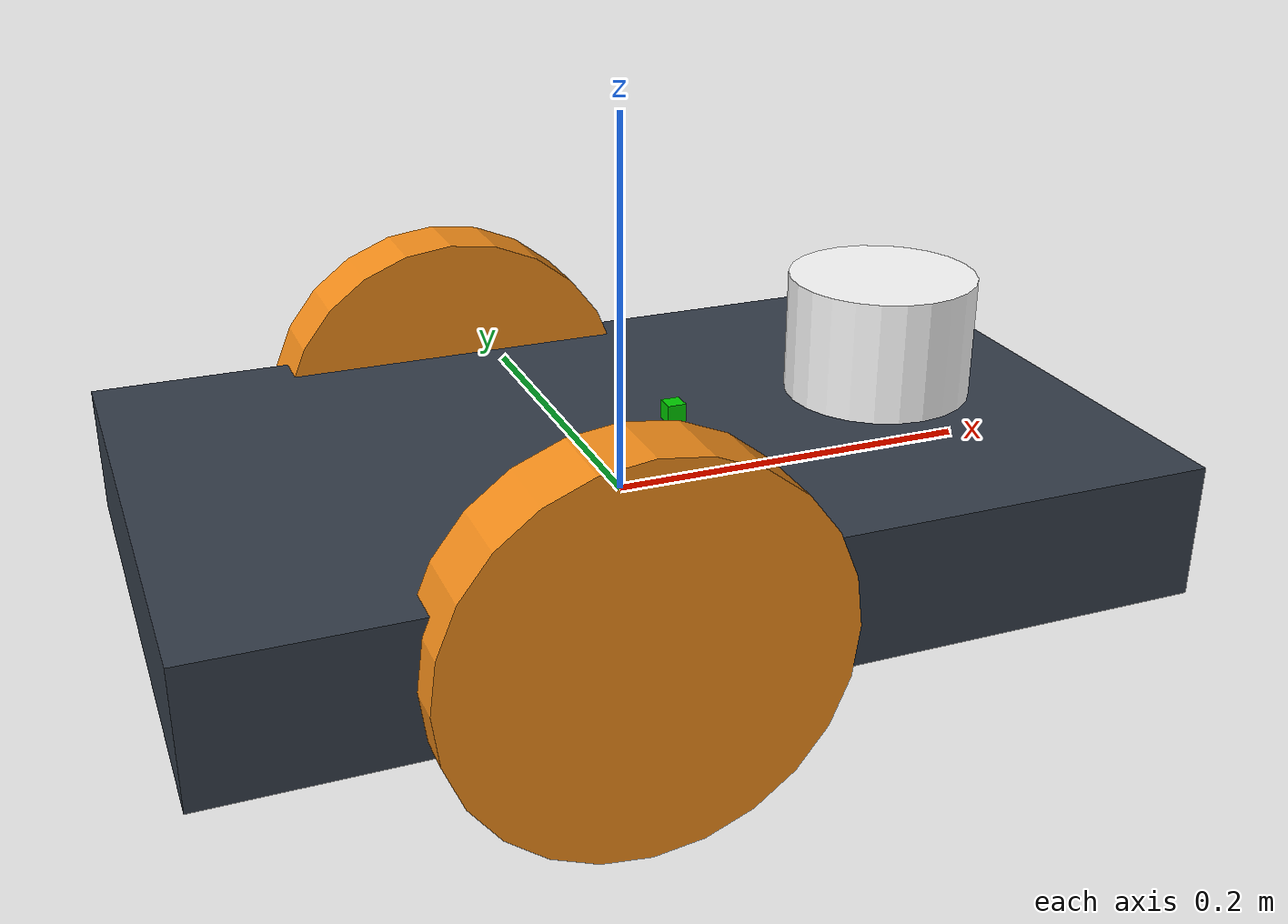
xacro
<?xml version="1.0" ?>
<robot name="m2wr"
    xmlns:xacro="http://www.ros.org/wiki/xacro">

    <xacro:include filename="$(find m2wr_description)/urdf/materials.xacro" />
    <xacro:include filename="$(find m2wr_description)/urdf/gazebo.xacro" />
    <xacro:include filename="$(find m2wr_description)/urdf/macro.xacro" />

    <link name="link_chassis">
        <!-- pose and inertial -->
        <pose>0 0 0.1 0 0 0</pose>
        <inertial>
            <mass value="5"/>
            <origin rpy="0 0 0" xyz="0 0 0.1"/>
            <inertia ixx="0.0395416666667" ixy="0" ixz="0" iyy="0.106208333333" iyz="0" izz="0.106208333333"/>
        </inertial>
        <!-- body -->
        <collision name="collision_chassis">
            <geometry>
                <box size="0.5 0.3 0.07"/>
            </geometry>
        </collision>
        <visual>
            <origin rpy="0 0 0" xyz="0 0 0"/>
            <geometry>
                <box size="0.5 0.3 0.07"/>
            </geometry>
            <material name="blue"/>
        </visual>
        <!-- caster front -->
        <collision name="caster_front_collision">
            <origin rpy=" 0 0 0" xyz="0.35 0 -0.05"/>
            <geometry>
                <sphere radius="0.05"/>
            </geometry>
            <surface>
                <friction>
                    <ode>
                        <mu>0</mu>
                        <mu2>0</mu2>
                        <slip1>1.0</slip1>
                        <slip2>1.0</slip2>
                    </ode>
                </friction>
            </surface>
        </collision>
        <visual name="caster_front_visual">
            <origin rpy=" 0 0 0" xyz="0.2 0 -0.05"/>
            <geometry>
                <sphere radius="0.05"/>
            </geometry>
            <material name="red"/>
        </visual>
    </link>

    <link name="sensor_laser">
        <inertial>
            <origin xyz="0 0 0" rpy="0 0 0" />
            <mass value="1" />
            <xacro:cylinder_inertia mass="1" r="0.05" l="0.1" />
        </inertial>
        <visual>
            <origin xyz="0 0 0" rpy="0 0 0" />
            <geometry>
                <cylinder radius="0.05" length="0.1" />
            </geometry>
            <material name="white" />
        </visual>
        <collision>
            <origin xyz="0 0 0" rpy="0 0 0" />
            <geometry>
                <cylinder radius="0.05" length="0.1" />
            </geometry>
        </collision>
    </link>

    <joint name="joint_sensor_laser" type="fixed">
        <origin xyz="0.15 0 0.05" rpy="0 0 0" />
        <parent link="link_chassis" />
        <child link="sensor_laser" />
    </joint>

    <link name="imu_link">
        <inertial>
            <mass value="1" />
            <origin xyz="0 0 0" rpy="0 0 0" />
            <inertia ixx="0.01" ixy="0.0" ixz="0.0" iyy="0.01" iyz="0.0" izz="0.01"/>
        </inertial>
        <collision>
            <origin xyz="0 0 0" rpy="0 0 0" />
            <geometry>
                <box size="0.1 0.1 0.1" />
            </geometry>
        </collision>
        <visual>
            <origin xyz="0 0 0" rpy="0 0 0" />
            <geometry>
                <box size="0.01 0.01 0.01" />
            </geometry>
            <material name="green" />
        </visual>
    </link>

    <gazebo reference="imu_link">
    <gravity>true</gravity>
    <sensor name="imu_sensor" type="imu">
      <always_on>true</always_on>
      <update_rate>100</update_rate>
      <visualize>true</visualize>
      <topic>__default_topic__</topic>
      <plugin filename="libgazebo_ros_imu_sensor.so" name="imu_plugin">
        <topicName>imu</topicName>
        <bodyName>imu_link</bodyName>
        <updateRateHZ>10.0</updateRateHZ>
        <gaussianNoise>0.0</gaussianNoise>
        <xyzOffset>0 0 0</xyzOffset>
        <rpyOffset>0 0 0</rpyOffset>
        <frameName>imu_link</frameName>
        <initialOrientationAsReference>false</initialOrientationAsReference>
      </plugin>
      <pose>0 0 0 0 0 0</pose>
    </sensor>
  </gazebo>

    <joint name="joint_sensor_imu" type="fixed">
        <origin xyz="0.03 0 0.04" rpy="0 0 0" />
        <parent link="link_chassis" />
        <child link="imu_link"/>
    </joint>

    <xacro:link_wheel name="link_right_wheel" />
    <xacro:joint_wheel name="joint_right_wheel" child="link_right_wheel" origin_xyz="-0.05 0.15 0" />

    <xacro:link_wheel name="link_left_wheel" />
    <xacro:joint_wheel name="joint_left_wheel" child="link_left_wheel" origin_xyz="-0.05 -0.15 0" />

</robot>

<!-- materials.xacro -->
<robot name="m2wr" xmlns:xacro="https://www.ros.org/wiki/xacro" >
    <material name="black">
    <color rgba="0.0 0.0 0.0 1.0"/>
  </material>
  <material name="blue">
    <color rgba="0.203125 0.23828125 0.28515625 1.0"/>
  </material>
  <material name="green">
    <color rgba="0.0 0.8 0.0 1.0"/>
  </material>
  <material name="grey">
    <color rgba="0.2 0.2 0.2 1.0"/>
  </material>
  <material name="orange">
    <color rgba="1.0 0.423529411765 0.0392156862745 1.0"/>
  </material>
  <material name="brown">
    <color rgba="0.870588235294 0.811764705882 0.764705882353 1.0"/>
  </material>
  <material name="red">
    <color rgba="0.80078125 0.12890625 0.1328125 1.0"/>
  </material>
  <material name="white">
    <color rgba="1.0 1.0 1.0 1.0"/>
  </material>
</robot>

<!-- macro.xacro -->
<robot xmlns:xacro="http://www.ros.org/wiki/xacro">
    <xacro:macro name="link_wheel" params="name">
        <link name="${name}">
            <inertial>
              <mass value="0.2"/>
              <origin rpy="0 1.5707 1.5707" xyz="0 0 0"/>
              <inertia ixx="0.000526666666667" ixy="0" ixz="0" iyy="0.000526666666667" iyz="0" izz="0.001"/>
            </inertial>
            <collision name="link_right_wheel_collision">
              <origin rpy="0 1.5707 1.5707" xyz="0 0 0"/>
              <geometry>
                <cylinder length="0.04" radius="0.1"/>
              </geometry>
            </collision>
            <visual name="${name}_visual">
              <origin rpy="0 1.5707 1.5707" xyz="0 0 0"/>
              <geometry>
                <cylinder length="0.04" radius="0.1"/>
              </geometry>
            </visual>
        </link>
    </xacro:macro>

    <xacro:macro name="joint_wheel" params="name child origin_xyz">
      <joint name="${name}" type="continuous">
        <origin rpy="0 0 0" xyz="${origin_xyz}"/>
        <child link="${child}"/>
        <parent link="link_chassis"/>
        <axis rpy="0 0 0" xyz="0 1 0"/>
        <limit effort="10000" velocity="1000"/>
        <joint_properties damping="1.0" friction="1.0"/>
      </joint>
    </xacro:macro>

    <xacro:macro name="cylinder_inertia" params="mass r l">
        <inertia ixx="${mass*(3*r*r+l*l)/12}" ixy="0" ixz="0" iyy="${mass*(3*r*r+l*l)/12}" iyz="0" izz="${mass*(r*r)/2}" />
    </xacro:macro>
</robot>
